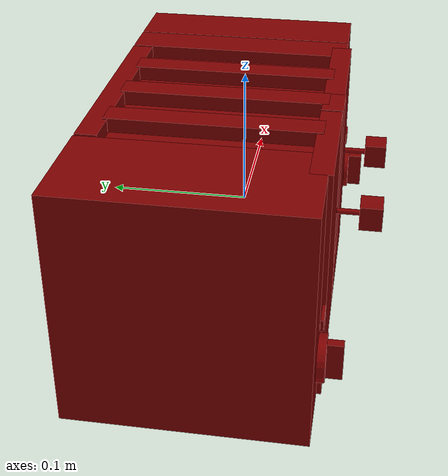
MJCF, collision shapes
<?xml version='1.0' encoding='UTF-8'?>
<mujoco model="model">
  <compiler angle="radian"/>
  <asset>
    <mesh file="visuals/Body001.obj" name="Body001_vis"/>
    <mesh file="visuals/Body002.obj" name="Body002_vis"/>
    <mesh file="visuals/Button001.obj" name="Button001_vis"/>
    <mesh file="visuals/Button002.obj" name="Button002_vis"/>
    <mesh file="visuals/Knob001.obj" name="Knob001_vis"/>
    <mesh file="visuals/Knob002.obj" name="Knob002_vis"/>
    <mesh file="visuals/Lever001.obj" name="Lever001_vis"/>
    <mesh file="visuals/Lever002.obj" name="Lever002_vis"/>
    <texture file="visuals/T_BC001.png" name="Body001_material" type="2d"/>
    <material name="Body001_material" rgba="1 1 1 1.0" texture="Body001_material" shininess="0.141421377658844" specular="0.3103448502657381"/>
    <texture file="visuals/T_BC001.png" name="Body002_material" type="2d"/>
    <material name="Body002_material" rgba="1 1 1 1.0" texture="Body002_material" shininess="0.141421377658844" specular="0.3103448502657381"/>
    <texture file="visuals/T_BC001.png" name="Button001_material" type="2d"/>
    <material name="Button001_material" rgba="1 1 1 1.0" texture="Button001_material" shininess="0.141421377658844" specular="0.3103448502657381"/>
    <texture file="visuals/T_BC001.png" name="Button002_material" type="2d"/>
    <material name="Button002_material" rgba="1 1 1 1.0" texture="Button002_material" shininess="0.141421377658844" specular="0.3103448502657381"/>
    <texture file="visuals/T_BC001.png" name="Knob001_material" type="2d"/>
    <material name="Knob001_material" rgba="1 1 1 1.0" texture="Knob001_material" shininess="0.141421377658844" specular="0.3103448502657381"/>
    <texture file="visuals/T_BC001.png" name="Knob002_material" type="2d"/>
    <material name="Knob002_material" rgba="1 1 1 1.0" texture="Knob002_material" shininess="0.141421377658844" specular="0.3103448502657381"/>
    <texture file="visuals/T_BC001.png" name="Lever001_material" type="2d"/>
    <material name="Lever001_material" rgba="1 1 1 1.0" texture="Lever001_material" shininess="0.141421377658844" specular="0.3103448502657381"/>
    <texture file="visuals/T_BC001.png" name="Lever002_material" type="2d"/>
    <material name="Lever002_material" rgba="1 1 1 1.0" texture="Lever002_material" shininess="0.141421377658844" specular="0.3103448502657381"/>
  </asset>
  <default>
    <default class="visual">
      <geom conaffinity="0" contype="0" group="1" type="mesh"/>
    </default>
    <default class="collision">
      <geom group="0" rgba="0.5 0 0 0.5"/>
    </default>
    <default class="spawn">
      <geom group="0" rgba="1 1 1 0.5" contype="0" conaffinity="0"/>
      <site group="0" rgba="1 1 1 0.5"/>
    </default>
    <default class="region">
      <geom group="1" conaffinity="0" contype="0" rgba="0 1 0 0"/>
    </default>
  </default>
  <worldbody>
    <body>
      <body name="object">
        <geom mesh="Body001_vis" type="mesh" solimp="0.998 0.998 0.001" solref="0.001 1" density="100" friction="0.95 0.3 0.1" class="visual" material="Body001_material"/>
        <geom class="collision" type="box" pos="-0.000183 0.093660 -0.001229" size="0.07996015250682831 0.007698425557464361 0.08635998517274857" quat="1.0 0.0 0.0 0.0"/>
        <geom class="collision" type="box" pos="-0.122383 0.017150 -0.001229" size="0.03957163169980049 0.08420601487159729 0.08636011928319931" quat="1.0 0.0 0.0 0.0"/>
        <geom class="collision" type="box" pos="0.096493 0.017150 -0.001229" size="0.014835930429399014 0.08420614898204803 0.08636024594306946" quat="1.0 0.0 0.0 0.0"/>
        <geom class="collision" type="box" pos="-0.059677 -0.062935 -0.001229" size="0.05121275410056114 0.007477189414203167 0.0863603800535202" quat="1.0 0.0 0.0 0.0"/>
        <geom class="collision" type="box" pos="0.048438 -0.062935 -0.001229" size="0.051212817430496216 0.007477197330445051 0.08636051416397095" quat="1.0 0.0 0.0 0.0"/>
        <geom class="collision" type="box" pos="-0.005625 -0.063320 0.025034" size="0.013773690909147263 0.007698476780205965 0.06071428582072258" quat="1.0 0.0 0.0 0.0"/>
        <geom class="collision" type="box" pos="-0.046195 0.014356 0.028332" size="0.00962340459227562 0.07465898245573044 0.05741694197058678" quat="1.0 0.0 0.0 0.0"/>
        <geom class="collision" type="box" pos="-0.000409 0.014356 0.028332" size="0.009533167816698551 0.07465862482786179 0.057416580617427826" quat="1.0 0.0 0.0 0.0"/>
        <geom class="collision" type="box" pos="0.045305 0.014356 0.028332" size="0.009229535236954689 0.07465905696153641 0.057417016476392746" quat="1.0 0.0 0.0 0.0"/>
        <geom class="collision" type="box" pos="-0.000301 0.017150 -0.049397" size="0.08161548525094986 0.08420707285404205 0.03819403797388077" quat="1.0 0.0 0.0 0.0"/>
        <geom class="collision" type="box" pos="0.135687 0.017150 -0.001229" size="0.02352333627641201 0.08420747518539429 0.08636157214641571" quat="1.0 0.0 0.0 0.0"/>
        <body name="Body002">
          <geom mesh="Body002_vis" type="mesh" solimp="0.998 0.998 0.001" solref="0.001 1" density="100" friction="0.95 0.3 0.1" class="visual" material="Body002_material"/>
        </body>
        <body name="Button001">
          <joint axis="0.0 1.0 0.0" pos="0.130485 -0.069760 -0.006239" limited="true" name="Button001_joint" range="0.0 0.001" type="slide" damping="1" frictionloss="1" armature=".01" stiffness="0.05"/>
          <geom mesh="Button001_vis" type="mesh" solimp="0.998 0.998 0.001" solref="0.001 1" density="100" friction="0.95 0.3 0.1" class="visual" material="Button001_material"/>
          <geom class="collision" type="box" pos="0.130540 -0.069584 -0.006128" size="0.008503951132297516 0.0010520482901483774 0.004225786775350571" quat="1.0 0.0 0.0 0.0"/>
        </body>
        <body name="Button002">
          <joint axis="0.0 1.0 0.0" pos="-0.131909 -0.069760 -0.006239" limited="true" name="Button002_joint" range="0.0 0.001" type="slide" damping="1" frictionloss="1" armature=".01" stiffness="0.05"/>
          <geom mesh="Button002_vis" type="mesh" solimp="0.998 0.998 0.001" solref="0.001 1" density="100" friction="0.95 0.3 0.1" class="visual" material="Button002_material"/>
          <geom class="collision" type="box" pos="-0.131890 -0.069584 -0.006128" size="0.008503960445523262 0.0010520494543015957 0.004225791431963444" quat="1.0 0.0 0.0 0.0"/>
        </body>
        <body name="Knob001">
          <joint axis="0.0 1.0 0.0" pos="-0.131489 -0.072990 -0.038143" limited="true" name="Knob001_joint" range="0.0 4.71238898038469" type="hinge" damping="0.05" armature="0.001" frictionloss="1" springref="-0.01"/>
          <geom mesh="Knob001_vis" type="mesh" solimp="0.998 0.998 0.001" solref="0.001 1" density="100" friction="0.95 0.3 0.1" class="visual" material="Knob001_material"/>
          <geom class="collision" type="cylinder" pos="-0.131489 -0.070472 -0.038143" size="0.01635758765041828 0.002851252444088459" quat="0.7071068286895752 0.7071067690849304 0.0 0.0" density="0.001"/>
          <geom class="collision" type="box" pos="-0.131489 -0.078726 -0.038738" size="0.003213199321180582 0.005723156034946442 0.013658959418535233" quat="1.0 0.0 0.0 0.0" density="0.001"/>
        </body>
        <body name="Knob002">
          <joint axis="0.0 1.0 0.0" pos="0.131435 -0.073000 -0.038143" limited="true" name="Knob002_joint" range="0.0 4.71238898038469" type="hinge" damping="0.05" armature="0.001" frictionloss="1" springref="-0.01"/>
          <geom mesh="Knob002_vis" type="mesh" solimp="0.998 0.998 0.001" solref="0.001 1" density="100" friction="0.95 0.3 0.1" class="visual" material="Knob002_material"/>
          <geom class="collision" type="cylinder" pos="0.131701 -0.070472 -0.038143" size="0.01635758765041828 0.002851252444088459" quat="0.7071068286895752 0.7071067690849304 0.0 0.0" density="0.001"/>
          <geom class="collision" type="box" pos="0.131701 -0.078595 -0.038738" size="0.003213199321180582 0.005592905916273594 0.013658959418535233" quat="1.0 0.0 0.0 0.0" density="0.001"/>
        </body>
        <body name="Lever001">
          <joint axis="0.0 0.0 -1.0" pos="-0.048045 -0.082018 0.023798" limited="true" name="Lever001_joint" range="0.0 0.064" type="slide" damping="0.5" frictionloss="1" armature=".01" stiffness="2.9" springref="-1.5"/>
          <geom mesh="Lever001_vis" type="mesh" solimp="0.998 0.998 0.001" solref="0.001 1" density="100" friction="0.95 0.3 0.1" class="visual" material="Lever001_material"/>
          <geom class="collision" type="box" pos="-0.048120 -0.095155 0.023515" size="0.00882396288216114 0.007886278443038464 0.008794779889285564" quat="1.0 0.0 0.0 0.0" name="sideL_lever_knob"/>
          <geom class="collision" type="box" pos="-0.023472 0.015184 0.071358" size="0.012499946169555187 0.06999976187944412 0.00460544228553772" quat="1.0 0.0 0.0 0.0" name="sideL_slotR_floor"/>
          <geom class="collision" type="box" pos="-0.068962 0.015184 0.071358" size="0.01249999925494194 0.07000000029802322 0.00460544228553772" quat="1.0 0.0 0.0 0.0" name="sideL_slotL_floor"/>
          <geom class="collision" type="cylinder" pos="-0.047714 -0.079492 0.023245" size="0.0020182179287075996 0.008060762658715248" quat="0.7071067094802856 0.7071068286895752 0.0 0.0"/>
        </body>
        <body name="Lever002">
          <joint axis="0.0 0.0 -1.0" pos="0.044614 -0.082018 0.023798" limited="true" name="Lever002_joint" range="0.0 0.064" type="slide" damping="0.5" frictionloss="1" armature=".01" stiffness="2.9" springref="-1.5"/>
          <geom mesh="Lever002_vis" type="mesh" solimp="0.998 0.998 0.001" solref="0.001 1" density="100" friction="0.95 0.3 0.1" class="visual" material="Lever002_material"/>
          <geom class="collision" type="box" pos="0.044711 -0.095155 0.023515" size="0.00882396288216114 0.007886278443038464 0.008794779889285564" quat="1.0 0.0 0.0 0.0" name="sideR_lever_knob"/>
          <geom class="collision" type="box" pos="0.068114 0.015184 0.071358" size="0.01249999925494194 0.07000000029802322 0.00460544228553772" quat="1.0 0.0 0.0 0.0" name="sideR_slotR_floor"/>
          <geom class="collision" type="box" pos="0.022422 0.015184 0.071358" size="0.01249999925494194 0.07000000029802322 0.00460544228553772" quat="1.0 0.0 0.0 0.0" name="sideR_slotL_floor"/>
          <geom class="collision" type="cylinder" pos="0.044982 -0.079492 0.023245" size="0.0020182179287075996 0.008060762658715248" quat="0.7071067094802856 0.7071068286895752 0.0 0.0"/>
        </body>
        <geom class="region" name="reg_main" type="box" pos="0.000906000000000004 0.015404000000000001 0.00027699999999999947" size="0.16233999999999998 0.089499 0.087197"/>
      </body>
    </body>
  </worldbody>
  <actuator>
    <motor name="Button001_joint_actuator" joint="Button001_joint" gear="0.5"/>
    <motor name="Button002_joint_actuator" joint="Button002_joint" gear="0.5"/>
    <motor name="Knob001_joint_actuator" joint="Knob001_joint" gear="0.5"/>
    <motor name="Knob002_joint_actuator" joint="Knob002_joint" gear="0.5"/>
    <motor name="Lever001_joint_actuator" joint="Lever001_joint" gear="0.5"/>
    <motor name="Lever002_joint_actuator" joint="Lever002_joint" gear="0.5"/>
  </actuator>
</mujoco>
